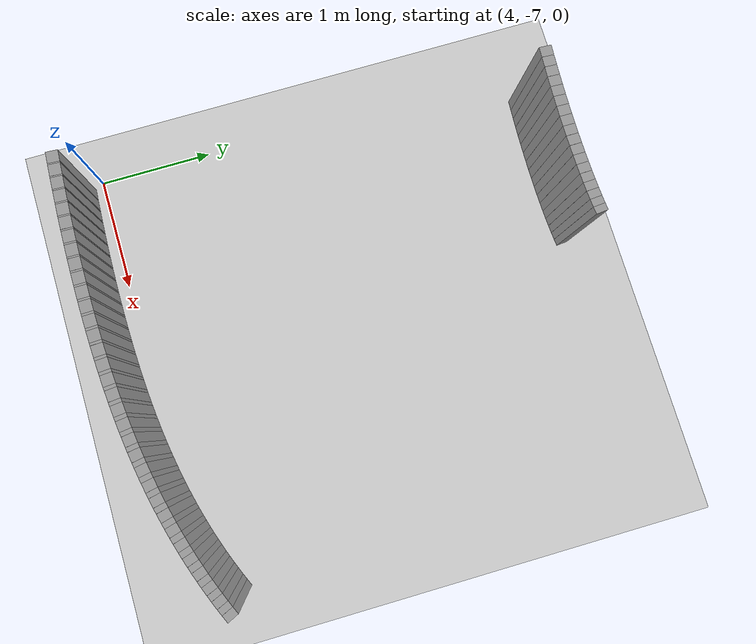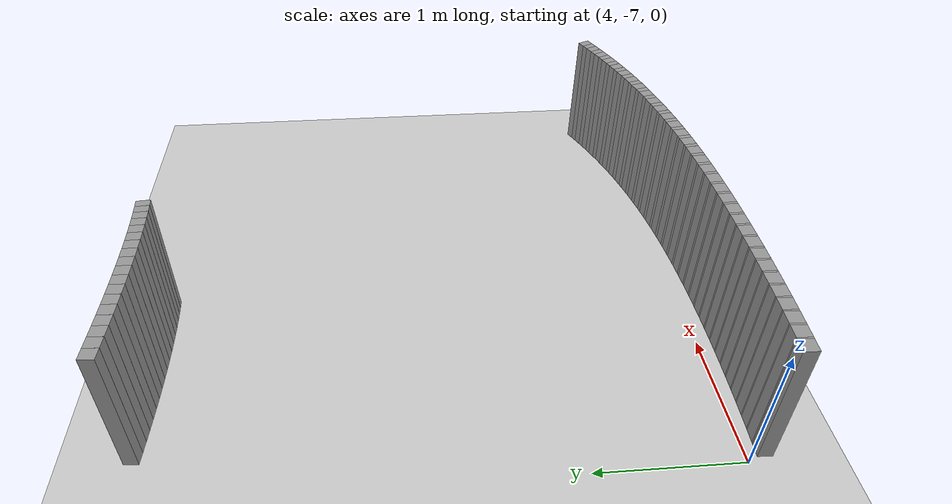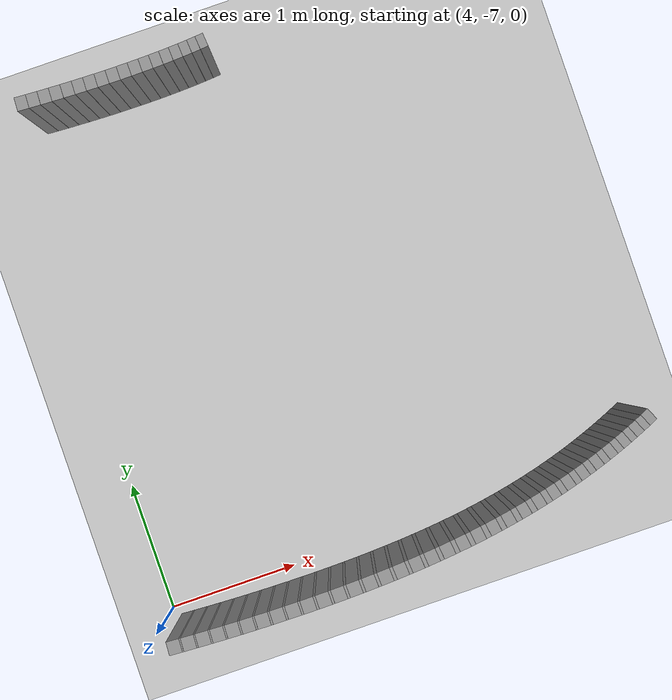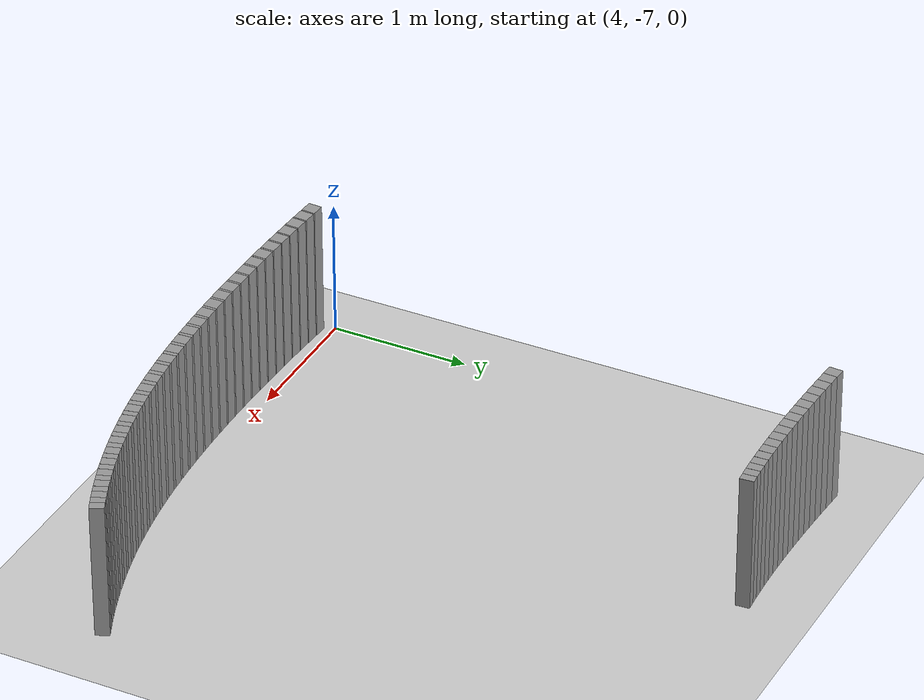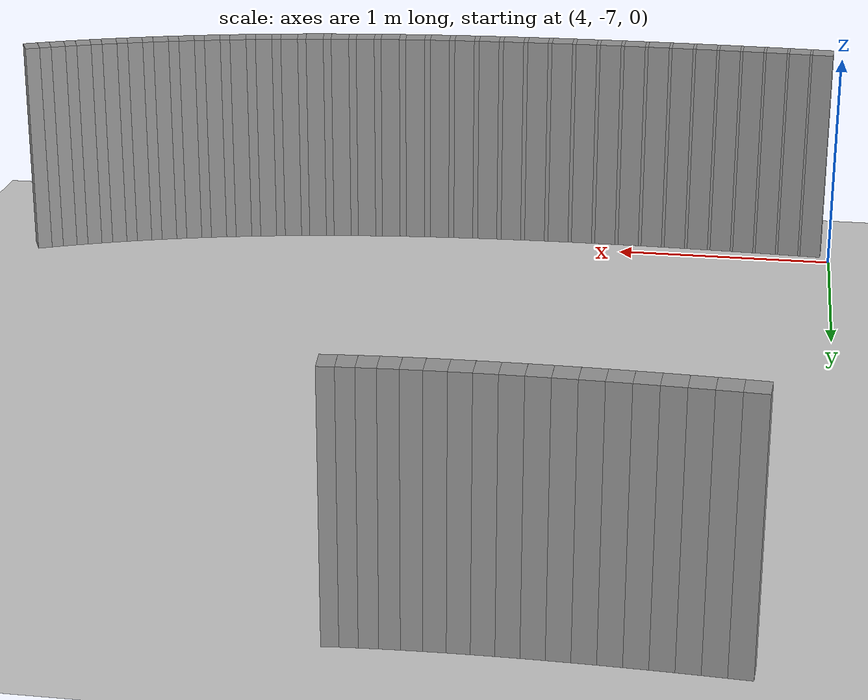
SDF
<sdf version="1.6">
 <world name="default">
  <include><uri>model://ground_plane</uri></include>
  <include><uri>model://sun</uri></include>
  <model name="wall_588_outward">
   <static>true</static>
   <link name="link">
    <collision name="collision">
     <geometry><box><size>0.06627042730125723 0.1 1.0</size></box></geometry>
    </collision>
    <visual name="visual">
     <geometry><box><size>0.06627042730125723 0.1 1.0</size></box></geometry>
     <material>
      <script><uri>file://media/materials/scripts/gazebo.material</uri><name>Gazebo/Gray</name></script>
     </material>
    </visual>
   </link>
   <pose>7.794615392788011 -6.683978554684339 0.5 0 0 -2.7150924524757714</pose>
  </model>
  <model name="wall_589_outward">
   <static>true</static>
   <link name="link">
    <collision name="collision">
     <geometry><box><size>0.0549587612287154 0.1 1.0</size></box></geometry>
    </collision>
    <visual name="visual">
     <geometry><box><size>0.0549587612287154 0.1 1.0</size></box></geometry>
     <material>
      <script><uri>file://media/materials/scripts/gazebo.material</uri><name>Gazebo/Gray</name></script>
     </material>
    </visual>
   </link>
   <pose>7.739276876362817 -6.708709218639398 0.5 0 0 -2.7288325751140525</pose>
  </model>
  <model name="wall_590_outward">
   <static>true</static>
   <link name="link">
    <collision name="collision">
     <geometry><box><size>0.06740500039941652 0.1 1.0</size></box></geometry>
    </collision>
    <visual name="visual">
     <geometry><box><size>0.06740500039941652 0.1 1.0</size></box></geometry>
     <material>
      <script><uri>file://media/materials/scripts/gazebo.material</uri><name>Gazebo/Gray</name></script>
     </material>
    </visual>
   </link>
   <pose>7.6830503868938065 -6.73282621639766 0.5 0 0 -2.742572697752328</pose>
  </model>
  <model name="wall_591_outward">
   <static>true</static>
   <link name="link">
    <collision name="collision">
     <geometry><box><size>0.05404270987663561 0.1 1.0</size></box></geometry>
    </collision>
    <visual name="visual">
     <geometry><box><size>0.05404270987663561 0.1 1.0</size></box></geometry>
     <material>
      <script><uri>file://media/materials/scripts/gazebo.material</uri><name>Gazebo/Gray</name></script>
     </material>
    </visual>
   </link>
   <pose>7.626957298886769 -6.756081018432481 0.5 0 0 -2.7560837862915024</pose>
  </model>
  <model name="wall_592_outward">
   <static>true</static>
   <link name="link">
    <collision name="collision">
     <geometry><box><size>0.06861879387193687 0.1 1.0</size></box></geometry>
    </collision>
    <visual name="visual">
     <geometry><box><size>0.06861879387193687 0.1 1.0</size></box></geometry>
     <material>
      <script><uri>file://media/materials/scripts/gazebo.material</uri><name>Gazebo/Gray</name></script>
     </material>
    </visual>
   </link>
   <pose>7.569956377666458 -6.7787125643121975 0.5 0 0 -2.769594874830688</pose>
  </model>
  <model name="wall_593_outward">
   <static>true</static>
   <link name="link">
    <collision name="collision">
     <geometry><box><size>0.053095581468589254 0.1 1.0</size></box></geometry>
    </collision>
    <visual name="visual">
     <geometry><box><size>0.053095581468589254 0.1 1.0</size></box></geometry>
     <material>
      <script><uri>file://media/materials/scripts/gazebo.material</uri><name>Gazebo/Gray</name></script>
     </material>
    </visual>
   </link>
   <pose>7.513135727767718 -6.800503629975518 0.5 0 0 -2.78286916003062</pose>
  </model>
  <model name="wall_594_outward">
   <static>true</static>
   <link name="link">
    <collision name="collision">
     <geometry><box><size>0.06990703469355782 0.1 1.0</size></box></geometry>
    </collision>
    <visual name="visual">
     <geometry><box><size>0.06990703469355782 0.1 1.0</size></box></geometry>
     <material>
      <script><uri>file://media/materials/scripts/gazebo.material</uri><name>Gazebo/Gray</name></script>
     </material>
    </visual>
   </link>
   <pose>7.455389233297448 -6.821659947365793 0.5 0 0 -2.7961434452305447</pose>
  </model>
  <model name="wall_595_outward">
   <static>true</static>
   <link name="link">
    <collision name="collision">
     <geometry><box><size>0.05207975315291838 0.1 1.0</size></box></geometry>
    </collision>
    <visual name="visual">
     <geometry><box><size>0.05207975315291838 0.1 1.0</size></box></geometry>
     <material>
      <script><uri>file://media/materials/scripts/gazebo.material</uri><name>Gazebo/Gray</name></script>
     </material>
    </visual>
   </link>
   <pose>7.397886391584759 -6.8419937369090995 0.5 0 0 -2.8091637514008707</pose>
  </model>
  <model name="wall_596_outward">
   <static>true</static>
   <link name="link">
    <collision name="collision">
     <geometry><box><size>0.07126877278915704 0.1 1.0</size></box></geometry>
    </collision>
    <visual name="visual">
     <geometry><box><size>0.07126877278915704 0.1 1.0</size></box></geometry>
     <material>
      <script><uri>file://media/materials/scripts/gazebo.material</uri><name>Gazebo/Gray</name></script>
     </material>
    </visual>
   </link>
   <pose>7.339440088517989 -6.861680967926851 0.5 0 0 -2.822184057571207</pose>
  </model>
  <model name="wall_597_outward">
   <static>true</static>
   <link name="link">
    <collision name="collision">
     <geometry><box><size>0.05097392776973177 0.1 1.0</size></box></geometry>
    </collision>
    <visual name="visual">
     <geometry><box><size>0.05097392776973177 0.1 1.0</size></box></geometry>
     <material>
      <script><uri>file://media/materials/scripts/gazebo.material</uri><name>Gazebo/Gray</name></script>
     </material>
    </visual>
   </link>
   <pose>7.281310155753585 -6.880564370174609 0.5 0 0 -2.8349278844546415</pose>
  </model>
  <model name="wall_598_outward">
   <static>true</static>
   <link name="link">
    <collision name="collision">
     <geometry><box><size>0.0727027337422325 0.1 1.0</size></box></geometry>
    </collision>
    <visual name="visual">
     <geometry><box><size>0.0727027337422325 0.1 1.0</size></box></geometry>
     <material>
      <script><uri>file://media/materials/scripts/gazebo.material</uri><name>Gazebo/Gray</name></script>
     </material>
    </visual>
   </link>
   <pose>7.222219818233321 -6.8987896465345075 0.5 0 0 -2.8476717113380645</pose>
  </model>
  <model name="wall_599_outward">
   <static>true</static>
   <link name="link">
    <collision name="collision">
     <geometry><box><size>0.04977485892525982 0.1 1.0</size></box></geometry>
    </collision>
    <visual name="visual">
     <geometry><box><size>0.04977485892525982 0.1 1.0</size></box></geometry>
     <material>
      <script><uri>file://media/materials/scripts/gazebo.material</uri><name>Gazebo/Gray</name></script>
     </material>
    </visual>
   </link>
   <pose>7.163519352941114 -6.916233999703327 0.5 0 0 -2.8601157472350756</pose>
  </model>
  <model name="wall_600_outward">
   <static>true</static>
   <link name="link">
    <collision name="collision">
     <geometry><box><size>0.07421030422105866 0.1 1.0</size></box></geometry>
    </collision>
    <visual name="visual">
     <geometry><box><size>0.07421030422105866 0.1 1.0</size></box></geometry>
     <material>
      <script><uri>file://media/materials/scripts/gazebo.material</uri><name>Gazebo/Gray</name></script>
     </material>
    </visual>
   </link>
   <pose>7.103840916660541 -6.933009619358495 0.5 0 0 -2.8725597831320875</pose>
  </model>
  <model name="wall_601_outward">
   <static>true</static>
   <link name="link">
    <collision name="collision">
     <geometry><box><size>0.04841986126981714 0.1 1.0</size></box></geometry>
    </collision>
    <visual name="visual">
     <geometry><box><size>0.04841986126981714 0.1 1.0</size></box></geometry>
     <material>
      <script><uri>file://media/materials/scripts/gazebo.material</uri><name>Gazebo/Gray</name></script>
     </material>
    </visual>
   </link>
   <pose>7.044655249749008 -6.949024130574921 0.5 0 0 -2.884665044092835</pose>
  </model>
  <model name="wall_602_outward">
   <static>true</static>
   <link name="link">
    <collision name="collision">
     <geometry><box><size>0.07579215083388645 0.1 1.0</size></box></geometry>
    </collision>
    <visual name="visual">
     <geometry><box><size>0.07579215083388645 0.1 1.0</size></box></geometry>
     <material>
      <script><uri>file://media/materials/scripts/gazebo.material</uri><name>Gazebo/Gray</name></script>
     </material>
    </visual>
   </link>
   <pose>6.984473973996927 -6.964361522656267 0.5 0 0 -2.8967703050535896</pose>
  </model>
  <model name="wall_603_outward">
   <static>true</static>
   <link name="link">
    <collision name="collision">
     <geometry><box><size>0.04691995874928324 0.1 1.0</size></box></geometry>
    </collision>
    <visual name="visual">
     <geometry><box><size>0.04691995874928324 0.1 1.0</size></box></geometry>
     <material>
      <script><uri>file://media/materials/scripts/gazebo.material</uri><name>Gazebo/Gray</name></script>
     </material>
    </visual>
   </link>
   <pose>6.924882397583599 -6.978965876473526 0.5 0 0 -2.9085005637509878</pose>
  </model>
  <model name="wall_604_outward">
   <static>true</static>
   <link name="link">
    <collision name="collision">
     <geometry><box><size>0.07744970908711989 0.1 1.0</size></box></geometry>
    </collision>
    <visual name="visual">
     <geometry><box><size>0.07744970908711989 0.1 1.0</size></box></geometry>
     <material>
      <script><uri>file://media/materials/scripts/gazebo.material</uri><name>Gazebo/Gray</name></script>
     </material>
    </visual>
   </link>
   <pose>6.864276907760781 -6.9928871970898445 0.5 0 0 -2.920230822448364</pose>
  </model>
  <model name="wall_605_outward">
   <static>true</static>
   <link name="link">
    <collision name="collision">
     <geometry><box><size>0.045177178706683675 0.1 1.0</size></box></geometry>
    </collision>
    <visual name="visual">
     <geometry><box><size>0.045177178706683675 0.1 1.0</size></box></geometry>
     <material>
      <script><uri>file://media/materials/scripts/gazebo.material</uri><name>Gazebo/Gray</name></script>
     </material>
    </visual>
   </link>
   <pose>6.804404942967606 -7.006099867068913 0.5 0 0 -2.931525357257578</pose>
  </model>
  <model name="wall_606_outward">
   <static>true</static>
   <link name="link">
    <collision name="collision">
     <geometry><box><size>0.07918091173613957 0.1 1.0</size></box></geometry>
    </collision>
    <visual name="visual">
     <geometry><box><size>0.07918091173613957 0.1 1.0</size></box></geometry>
     <material>
      <script><uri>file://media/materials/scripts/gazebo.material</uri><name>Gazebo/Gray</name></script>
     </material>
    </visual>
   </link>
   <pose>6.743502015087227 -7.018627953900948 0.5 0 0 -2.942819892066797</pose>
  </model>
  <model name="wall_607_outward">
   <static>true</static>
   <link name="link">
    <collision name="collision">
     <geometry><box><size>0.04321322068265127 0.1 1.0</size></box></geometry>
    </collision>
    <visual name="visual">
     <geometry><box><size>0.04321322068265127 0.1 1.0</size></box></geometry>
     <material>
      <script><uri>file://media/materials/scripts/gazebo.material</uri><name>Gazebo/Gray</name></script>
     </material>
    </visual>
   </link>
   <pose>6.683465083177946 -7.0304832430115205 0.5 0 0 -2.9536234073933123</pose>
  </model>
  <model name="wall_608_outward">
   <static>true</static>
   <link name="link">
    <collision name="collision">
     <geometry><box><size>0.08097906192641398 0.1 1.0</size></box></geometry>
    </collision>
    <visual name="visual">
     <geometry><box><size>0.08097906192641398 0.1 1.0</size></box></geometry>
     <material>
      <script><uri>file://media/materials/scripts/gazebo.material</uri><name>Gazebo/Gray</name></script>
     </material>
    </visual>
   </link>
   <pose>6.622383302626609 -7.041656637421045 0.5 0 0 -2.9644269227198308</pose>
  </model>
  <model name="wall_609_outward">
   <static>true</static>
   <link name="link">
    <collision name="collision">
     <geometry><box><size>0.041040984313733576 0.1 1.0</size></box></geometry>
    </collision>
    <visual name="visual">
     <geometry><box><size>0.041040984313733576 0.1 1.0</size></box></geometry>
     <material>
      <script><uri>file://media/materials/scripts/gazebo.material</uri><name>Gazebo/Gray</name></script>
     </material>
    </visual>
   </link>
   <pose>6.562292216391684 -7.052201627062857 0.5 0 0 -2.974687348827343</pose>
  </model>
  <model name="wall_610_outward">
   <static>true</static>
   <link name="link">
    <collision name="collision">
     <geometry><box><size>0.08283197364068758 0.1 1.0</size></box></geometry>
    </collision>
    <visual name="visual">
     <geometry><box><size>0.08283197364068758 0.1 1.0</size></box></geometry>
     <material>
      <script><uri>file://media/materials/scripts/gazebo.material</uri><name>Gazebo/Gray</name></script>
     </material>
    </visual>
   </link>
   <pose>6.501147984754352 -7.062071829415188 0.5 0 0 -2.9849477749348514</pose>
  </model>
  <model name="wall_611_outward">
   <static>true</static>
   <link name="link">
    <collision name="collision">
     <geometry><box><size>0.03866749161413029 0.1 1.0</size></box></geometry>
    </collision>
    <visual name="visual">
     <geometry><box><size>0.03866749161413029 0.1 1.0</size></box></geometry>
     <material>
      <script><uri>file://media/materials/scripts/gazebo.material</uri><name>Gazebo/Gray</name></script>
     </material>
    </visual>
   </link>
   <pose>6.441113791654345 -7.071364344940091 0.5 0 0 -2.9946147984037395</pose>
  </model>
  <model name="wall_612_outward">
   <static>true</static>
   <link name="link">
    <collision name="collision">
     <geometry><box><size>0.08472186456942572 0.1 1.0</size></box></geometry>
    </collision>
    <visual name="visual">
     <geometry><box><size>0.08472186456942572 0.1 1.0</size></box></geometry>
     <material>
      <script><uri>file://media/materials/scripts/gazebo.material</uri><name>Gazebo/Gray</name></script>
     </material>
    </visual>
   </link>
   <pose>6.380026281486312 -7.079994111488824 0.5 0 0 -3.0042818218726173</pose>
  </model>
  <model name="wall_613_outward">
   <static>true</static>
   <link name="link">
    <collision name="collision">
     <geometry><box><size>0.03615880704034693 0.1 1.0</size></box></geometry>
    </collision>
    <visual name="visual">
     <geometry><box><size>0.03615880704034693 0.1 1.0</size></box></geometry>
     <material>
      <script><uri>file://media/materials/scripts/gazebo.material</uri><name>Gazebo/Gray</name></script>
     </material>
    </visual>
   </link>
   <pose>6.320133191215676 -7.088105174646982 0.5 0 0 -3.0133216467522566</pose>
  </model>
  <model name="wall_614_outward">
   <static>true</static>
   <link name="link">
    <collision name="collision">
     <geometry><box><size>0.08662164908750382 0.1 1.0</size></box></geometry>
    </collision>
    <visual name="visual">
     <geometry><box><size>0.08662164908750382 0.1 1.0</size></box></geometry>
     <material>
      <script><uri>file://media/materials/scripts/gazebo.material</uri><name>Gazebo/Gray</name></script>
     </material>
    </visual>
   </link>
   <pose>6.259198984047567 -7.095569657929078 0.5 0 0 -3.022361471631895</pose>
  </model>
  <model name="wall_615_outward">
   <static>true</static>
   <link name="link">
    <collision name="collision">
     <geometry><box><size>0.03359078083096853 0.1 1.0</size></box></geometry>
    </collision>
    <visual name="visual">
     <geometry><box><size>0.03359078083096853 0.1 1.0</size></box></geometry>
     <material>
      <script><uri>file://media/materials/scripts/gazebo.material</uri><name>Gazebo/Gray</name></script>
     </material>
    </visual>
   </link>
   <pose>6.1995033115802185 -7.102579113381811 0.5 0 0 -3.0307592655454667</pose>
  </model>
  <model name="wall_616_outward">
   <static>true</static>
   <link name="link">
    <collision name="collision">
     <geometry><box><size>0.08849886817367057 0.1 1.0</size></box></geometry>
    </collision>
    <visual name="visual">
     <geometry><box><size>0.08849886817367057 0.1 1.0</size></box></geometry>
     <material>
      <script><uri>file://media/materials/scripts/gazebo.material</uri><name>Gazebo/Gray</name></script>
     </material>
    </visual>
   </link>
   <pose>6.138793491997008 -7.1089615888655615 0.5 0 0 -3.039157059459063</pose>
  </model>
  <model name="wall_617_outward">
   <static>true</static>
   <link name="link">
    <collision name="collision">
     <geometry><box><size>0.031006895213621127 0.1 1.0</size></box></geometry>
    </collision>
    <visual name="visual">
     <geometry><box><size>0.031006895213621127 0.1 1.0</size></box></geometry>
     <material>
      <script><uri>file://media/materials/scripts/gazebo.material</uri><name>Gazebo/Gray</name></script>
     </material>
    </visual>
   </link>
   <pose>6.079342005616445 -7.1149521159610964 0.5 0 0 -3.0469088608970756</pose>
  </model>
  <model name="wall_618_outward">
   <static>true</static>
   <link name="link">
    <collision name="collision">
     <geometry><box><size>0.09031620159547896 0.1 1.0</size></box></geometry>
    </collision>
    <visual name="visual">
     <geometry><box><size>0.09031620159547896 0.1 1.0</size></box></geometry>
     <material>
      <script><uri>file://media/materials/scripts/gazebo.material</uri><name>Gazebo/Gray</name></script>
     </material>
    </visual>
   </link>
   <pose>6.018920425988029 -7.120338589814447 0.5 0 0 -3.054660662335089</pose>
  </model>
  <model name="wall_619_outward">
   <static>true</static>
   <link name="link">
    <collision name="collision">
     <geometry><box><size>0.02852899562708041 0.1 1.0</size></box></geometry>
    </collision>
    <visual name="visual">
     <geometry><box><size>0.02852899562708041 0.1 1.0</size></box></geometry>
     <material>
      <script><uri>file://media/materials/scripts/gazebo.material</uri><name>Gazebo/Gray</name></script>
     </material>
    </visual>
   </link>
   <pose>5.959713747679501 -7.125396425451646 0.5 0 0 -3.0617929717116064</pose>
  </model>
  <model name="wall_620_outward">
   <static>true</static>
   <link name="link">
    <collision name="collision">
     <geometry><box><size>0.09203153227418259 0.1 1.0</size></box></geometry>
    </collision>
    <visual name="visual">
     <geometry><box><size>0.09203153227418259 0.1 1.0</size></box></geometry>
     <material>
      <script><uri>file://media/materials/scripts/gazebo.material</uri><name>Gazebo/Gray</name></script>
     </material>
    </visual>
   </link>
   <pose>5.899600318471309 -7.129874422815136 0.5 0 0 -3.068925281088127</pose>
  </model>
  <model name="wall_621_outward">
   <static>true</static>
   <link name="link">
    <collision name="collision">
     <geometry><box><size>0.026174369833819537 0.1 1.0</size></box></geometry>
    </collision>
    <visual name="visual">
     <geometry><box><size>0.026174369833819537 0.1 1.0</size></box></geometry>
     <material>
      <script><uri>file://media/materials/scripts/gazebo.material</uri><name>Gazebo/Gray</name></script>
     </material>
    </visual>
   </link>
   <pose>5.840647408613172 -7.134080068567046 0.5 0 0 -3.0754689202453984</pose>
  </model>
  <model name="wall_622_outward">
   <static>true</static>
   <link name="link">
    <collision name="collision">
     <geometry><box><size>0.09360728423955691 0.1 1.0</size></box></geometry>
    </collision>
    <visual name="visual">
     <geometry><box><size>0.09360728423955691 0.1 1.0</size></box></geometry>
     <material>
      <script><uri>file://media/materials/scripts/gazebo.material</uri><name>Gazebo/Gray</name></script>
     </material>
    </visual>
   </link>
   <pose>5.780868228941232 -7.137731727507622 0.5 0 0 -3.082012559402664</pose>
  </model>
  <model name="wall_623_outward">
   <static>true</static>
   <link name="link">
    <collision name="collision">
     <geometry><box><size>0.02402663630371048 0.1 1.0</size></box></geometry>
    </collision>
    <visual name="visual">
     <geometry><box><size>0.02402663630371048 0.1 1.0</size></box></geometry>
     <material>
      <script><uri>file://media/materials/scripts/gazebo.material</uri><name>Gazebo/Gray</name></script>
     </material>
    </visual>
   </link>
   <pose>5.722151551237232 -7.141161929870149 0.5 0 0 -3.088019254599149</pose>
  </model>
  <model name="wall_624_outward">
   <static>true</static>
   <link name="link">
    <collision name="collision">
     <geometry><box><size>0.09500541168517114 0.1 1.0</size></box></geometry>
    </collision>
    <visual name="visual">
     <geometry><box><size>0.09500541168517114 0.1 1.0</size></box></geometry>
     <material>
      <script><uri>file://media/materials/scripts/gazebo.material</uri><name>Gazebo/Gray</name></script>
     </material>
    </visual>
   </link>
   <pose>5.6627064923595185 -7.144063911499246 0.5 0 0 -3.094025949795685</pose>
  </model>
  <model name="wall_625_outward">
   <static>true</static>
   <link name="link">
    <collision name="collision">
     <geometry><box><size>0.022085663145297404 0.1 1.0</size></box></geometry>
    </collision>
    <visual name="visual">
     <geometry><box><size>0.022085663145297404 0.1 1.0</size></box></geometry>
     <material>
      <script><uri>file://media/materials/scripts/gazebo.material</uri><name>Gazebo/Gray</name></script>
     </material>
    </visual>
   </link>
   <pose>5.604224443759633 -7.146786768599914 0.5 0 0 -3.0995473936367888</pose>
  </model>
  <model name="wall_626_outward">
   <static>true</static>
   <link name="link">
    <collision name="collision">
     <geometry><box><size>0.09619620018702894 0.1 1.0</size></box></geometry>
    </collision>
    <visual name="visual">
     <geometry><box><size>0.09619620018702894 0.1 1.0</size></box></geometry>
     <material>
      <script><uri>file://media/materials/scripts/gazebo.material</uri><name>Gazebo/Gray</name></script>
     </material>
    </visual>
   </link>
   <pose>5.5451253490414025 -7.149007266151511 0.5 0 0 -3.10506883747779</pose>
  </model>
  <model name="wall_627_outward">
   <static>true</static>
   <link name="link">
    <collision name="collision">
     <geometry><box><size>0.02039786319269992 0.1 1.0</size></box></geometry>
    </collision>
    <visual name="visual">
     <geometry><box><size>0.02039786319269992 0.1 1.0</size></box></geometry>
     <material>
      <script><uri>file://media/materials/scripts/gazebo.material</uri><name>Gazebo/Gray</name></script>
     </material>
    </visual>
   </link>
   <pose>5.486865430206006 -7.151084043594163 0.5 0 0 -3.110168325377729</pose>
  </model>
  <model name="wall_628_outward">
   <static>true</static>
   <link name="link">
    <collision name="collision">
     <geometry><box><size>0.09715945075471649 0.1 1.0</size></box></geometry>
    </collision>
    <visual name="visual">
     <geometry><box><size>0.09715945075471649 0.1 1.0</size></box></geometry>
     <material>
      <script><uri>file://media/materials/scripts/gazebo.material</uri><name>Gazebo/Gray</name></script>
     </material>
    </visual>
   </link>
   <pose>5.4281086403164505 -7.152683191234309 0.5 0 0 -3.115267813277764</pose>
  </model>
  <model name="wall_629_outward">
   <static>true</static>
   <link name="link">
    <collision name="collision">
     <geometry><box><size>0.018963465211720636 0.1 1.0</size></box></geometry>
    </collision>
    <visual name="visual">
     <geometry><box><size>0.018963465211720636 0.1 1.0</size></box></geometry>
     <material>
      <script><uri>file://media/materials/scripts/gazebo.material</uri><name>Gazebo/Gray</name></script>
     </material>
    </visual>
   </link>
   <pose>5.370066222696632 -7.154166534457298 0.5 0 0 -3.120008697340025</pose>
  </model>
  <model name="wall_630_outward">
   <static>true</static>
   <link name="link">
    <collision name="collision">
     <geometry><box><size>0.09788377882166659 0.1 1.0</size></box></geometry>
    </collision>
    <visual name="visual">
     <geometry><box><size>0.09788377882166659 0.1 1.0</size></box></geometry>
     <material>
      <script><uri>file://media/materials/scripts/gazebo.material</uri><name>Gazebo/Gray</name></script>
     </material>
    </visual>
   </link>
   <pose>5.3116517511838435 -7.155195464670436 0.5 0 0 -3.124749581402259</pose>
  </model>
  <model name="wall_631_outward">
   <static>true</static>
   <link name="link">
    <collision name="collision">
     <geometry><box><size>0.017705980044105868 0.1 1.0</size></box></geometry>
    </collision>
    <visual name="visual">
     <geometry><box><size>0.017705980044105868 0.1 1.0</size></box></geometry>
     <material>
      <script><uri>file://media/materials/scripts/gazebo.material</uri><name>Gazebo/Gray</name></script>
     </material>
    </visual>
   </link>
   <pose>5.253864496155176 -7.156129678353066 0.5 0 0 -3.1291760908688047</pose>
  </model>
  <model name="wall_632_outward">
   <static>true</static>
   <link name="link">
    <collision name="collision">
     <geometry><box><size>0.09837152458688993 0.1 1.0</size></box></geometry>
    </collision>
    <visual name="visual">
     <geometry><box><size>0.09837152458688993 0.1 1.0</size></box></geometry>
     <material>
      <script><uri>file://media/materials/scripts/gazebo.material</uri><name>Gazebo/Gray</name></script>
     </material>
    </visual>
   </link>
   <pose>5.195827996292772 -7.15663259191301 0.5 0 0 -3.1336026003352724</pose>
  </model>
  <model name="wall_633_outward">
   <static>true</static>
   <link name="link">
    <collision name="collision">
     <geometry><box><size>0.016660097984225134 0.1 1.0</size></box></geometry>
    </collision>
    <visual name="visual">
     <geometry><box><size>0.016660097984225134 0.1 1.0</size></box></geometry>
     <material>
      <script><uri>file://media/materials/scripts/gazebo.material</uri><name>Gazebo/Gray</name></script>
     </material>
    </visual>
   </link>
   <pose>5.138313815969153 -7.15705744709051 0.5 0 0 -3.1377676368734497</pose>
  </model>
  <model name="wall_634_outward">
   <static>true</static>
   <link name="link">
    <collision name="collision">
     <geometry><box><size>0.09863455235709448 0.1 1.0</size></box></geometry>
    </collision>
    <visual name="visual">
     <geometry><box><size>0.09863455235709448 0.1 1.0</size></box></geometry>
     <material>
      <script><uri>file://media/materials/scripts/gazebo.material</uri><name>Gazebo/Gray</name></script>
     </material>
    </visual>
   </link>
   <pose>5.080666554586734 -7.157072540738317 0.5 0 0 3.1412526337678583</pose>
  </model>
  <model name="wall_635_outward">
   <static>true</static>
   <link name="link">
    <collision name="collision">
     <geometry><box><size>0.01577620641408521 0.1 1.0</size></box></geometry>
    </collision>
    <visual name="visual">
     <geometry><box><size>0.01577620641408521 0.1 1.0</size></box></geometry>
     <material>
      <script><uri>file://media/materials/scripts/gazebo.material</uri><name>Gazebo/Gray</name></script>
     </material>
    </visual>
   </link>
   <pose>5.023461250438485 -7.157021978712336 0.5 0 0 3.1373085719389526</pose>
  </model>
  <model name="wall_636_outward">
   <static>true</static>
   <link name="link">
    <collision name="collision">
     <geometry><box><size>0.09869404076234123 0.1 1.0</size></box></geometry>
    </collision>
    <visual name="visual">
     <geometry><box><size>0.09869404076234123 0.1 1.0</size></box></geometry>
     <material>
      <script><uri>file://media/materials/scripts/gazebo.material</uri><name>Gazebo/Gray</name></script>
     </material>
    </visual>
   </link>
   <pose>4.966227869681822 -7.156582155755067 0.5 0 0 3.1333645101100513</pose>
  </model>
  <model name="wall_637_outward">
   <static>true</static>
   <link name="link">
    <collision name="collision">
     <geometry><box><size>0.014995840343432574 0.1 1.0</size></box></geometry>
    </collision>
    <visual name="visual">
     <geometry><box><size>0.014995840343432574 0.1 1.0</size></box></geometry>
     <material>
      <script><uri>file://media/materials/scripts/gazebo.material</uri><name>Gazebo/Gray</name></script>
     </material>
    </visual>
   </link>
   <pose>4.909385137360482 -7.156086324687422 0.5 0 0 3.1296155412423543</pose>
  </model>
  <model name="wall_638_outward">
   <static>true</static>
   <link name="link">
    <collision name="collision">
     <geometry><box><size>0.09857794679557734 0.1 1.0</size></box></geometry>
    </collision>
    <visual name="visual">
     <geometry><box><size>0.09857794679557734 0.1 1.0</size></box></geometry>
     <material>
      <script><uri>file://media/materials/scripts/gazebo.material</uri><name>Gazebo/Gray</name></script>
     </material>
    </visual>
   </link>
   <pose>4.8526048762707354 -7.155221432952356 0.5 0 0 3.1258665723747185</pose>
  </model>
  <model name="wall_639_outward">
   <static>true</static>
   <link name="link">
    <collision name="collision">
     <geometry><box><size>0.014318399857780335 0.1 1.0</size></box></geometry>
    </collision>
    <visual name="visual">
     <geometry><box><size>0.014318399857780335 0.1 1.0</size></box></geometry>
     <material>
      <script><uri>file://media/materials/scripts/gazebo.material</uri><name>Gazebo/Gray</name></script>
     </material>
    </visual>
   </link>
   <pose>4.796164131747254 -7.154308137801858 0.5 0 0 3.122286964765696</pose>
  </model>
  <model name="wall_640_outward">
   <static>true</static>
   <link name="link">
    <collision name="collision">
     <geometry><box><size>0.0983176949674708 0.1 1.0</size></box></geometry>
    </collision>
    <visual name="visual">
     <geometry><box><size>0.0983176949674708 0.1 1.0</size></box></geometry>
     <material>
      <script><uri>file://media/materials/scripts/gazebo.material</uri><name>Gazebo/Gray</name></script>
     </material>
    </visual>
   </link>
   <pose>4.739860291031262 -7.153045016503603 0.5 0 0 3.1187073571566293</pose>
  </model>
  <model name="wall_641_outward">
   <static>true</static>
   <link name="link">
    <collision name="collision">
     <geometry><box><size>0.013669290022458588 0.1 1.0</size></box></geometry>
    </collision>
    <visual name="visual">
     <geometry><box><size>0.013669290022458588 0.1 1.0</size></box></geometry>
     <material>
      <script><uri>file://media/materials/scripts/gazebo.material</uri><name>Gazebo/Gray</name></script>
     </material>
    </visual>
   </link>
   <pose>4.683882035186505 -7.151740351524725 0.5 0 0 3.1152900279996714</pose>
  </model>
  <model name="wall_642_outward">
   <static>true</static>
   <link name="link">
    <collision name="collision">
     <geometry><box><size>0.09794402322084232 0.1 1.0</size></box></geometry>
    </collision>
    <visual name="visual">
     <geometry><box><size>0.09794402322084232 0.1 1.0</size></box></geometry>
     <material>
      <script><uri>file://media/materials/scripts/gazebo.material</uri><name>Gazebo/Gray</name></script>
     </material>
    </visual>
   </link>
   <pose>4.6280993689306005 -7.150105371425072 0.5 0 0 3.1118726988427263</pose>
  </model>
  <model name="wall_643_outward">
   <static>true</static>
   <link name="link">
    <collision name="collision">
     <geometry><box><size>0.01307807762528599 0.1 1.0</size></box></geometry>
    </collision>
    <visual name="visual">
     <geometry><box><size>0.01307807762528599 0.1 1.0</size></box></geometry>
     <material>
      <script><uri>file://media/materials/scripts/gazebo.material</uri><name>Gazebo/Gray</name></script>
     </material>
    </visual>
   </link>
   <pose>4.572613502724005 -7.148434459342698 0.5 0 0 3.1086031736113133</pose>
  </model>
  <model name="wall_644_outward">
   <static>true</static>
   <link name="link">
    <collision name="collision">
     <geometry><box><size>0.09748605995292195 0.1 1.0</size></box></geometry>
    </collision>
    <visual name="visual">
     <geometry><box><size>0.09748605995292195 0.1 1.0</size></box></geometry>
     <material>
      <script><uri>file://media/materials/scripts/gazebo.material</uri><name>Gazebo/Gray</name></script>
     </material>
    </visual>
   </link>
   <pose>4.517367029946304 -7.146451792440995 0.5 0 0 3.1053336483799048</pose>
  </model>
  <model name="wall_645_outward">
   <static>true</static>
   <link name="link">
    <collision name="collision">
     <geometry><box><size>0.012495511738905786 0.1 1.0</size></box></geometry>
    </collision>
    <visual name="visual">
     <geometry><box><size>0.012495511738905786 0.1 1.0</size></box></geometry>
     <material>
      <script><uri>file://media/materials/scripts/gazebo.material</uri><name>Gazebo/Gray</name></script>
     </material>
    </visual>
   </link>
   <pose>4.462413126743181 -7.144438814832902 0.5 0 0 3.102209765364347</pose>
  </model>
  <model name="wall_646_outward">
   <static>true</static>
   <link name="link">
    <collision name="collision">
     <geometry><box><size>0.09696810999644395 0.1 1.0</size></box></geometry>
    </collision>
    <visual name="visual">
     <geometry><box><size>0.09696810999644395 0.1 1.0</size></box></geometry>
     <material>
      <script><uri>file://media/materials/scripts/gazebo.material</uri><name>Gazebo/Gray</name></script>
     </material>
    </visual>
   </link>
   <pose>4.407729954942328 -7.142132543686486 0.5 0 0 3.099085882348835</pose>
  </model>
  <model name="wall_647_outward">
   <static>true</static>
   <link name="link">
    <collision name="collision">
     <geometry><box><size>0.01194633707090099 0.1 1.0</size></box></geometry>
    </collision>
    <visual name="visual">
     <geometry><box><size>0.01194633707090099 0.1 1.0</size></box></geometry>
     <material>
      <script><uri>file://media/materials/scripts/gazebo.material</uri><name>Gazebo/Gray</name></script>
     </material>
    </visual>
   </link>
   <pose>4.353322706035473 -7.139800617828621 0.5 0 0 3.0960992936412213</pose>
  </model>
  <model name="wall_648_outward">
   <static>true</static>
   <link name="link">
    <collision name="collision">
     <geometry><box><size>0.09640871263027649 0.1 1.0</size></box></geometry>
    </collision>
    <visual name="visual">
     <geometry><box><size>0.09640871263027649 0.1 1.0</size></box></geometry>
     <material>
      <script><uri>file://media/materials/scripts/gazebo.material</uri><name>Gazebo/Gray</name></script>
     </material>
    </visual>
   </link>
   <pose>4.299207997676434 -7.137192942642365 0.5 0 0 3.093112704933551</pose>
  </model>
  <model name="wall_649_outward">
   <static>true</static>
   <link name="link">
    <collision name="collision">
     <geometry><box><size>0.011422104961910415 0.1 1.0</size></box></geometry>
    </collision>
    <visual name="visual">
     <geometry><box><size>0.011422104961910415 0.1 1.0</size></box></geometry>
     <material>
      <script><uri>file://media/materials/scripts/gazebo.material</uri><name>Gazebo/Gray</name></script>
     </material>
    </visual>
   </link>
   <pose>4.24535674887173 -7.134563862378443 0.5 0 0 3.0902571748123555</pose>
  </model>
  <model name="wall_650_outward">
   <static>true</static>
   <link name="link">
    <collision name="collision">
     <geometry><box><size>0.09581864623385208 0.1 1.0</size></box></geometry>
    </collision>
    <visual name="visual">
     <geometry><box><size>0.09581864623385208 0.1 1.0</size></box></geometry>
     <material>
      <script><uri>file://media/materials/scripts/gazebo.material</uri><name>Gazebo/Gray</name></script>
     </material>
    </visual>
   </link>
   <pose>4.191814226492393 -7.1316758274988645 0.5 0 0 3.0874016446912185</pose>
  </model>
  <model name="wall_651_outward">
   <static>true</static>
   <link name="link">
    <collision name="collision">
     <geometry><box><size>0.010906183000362845 0.1 1.0</size></box></geometry>
    </collision>
    <visual name="visual">
     <geometry><box><size>0.010906183000362845 0.1 1.0</size></box></geometry>
     <material>
      <script><uri>file://media/materials/scripts/gazebo.material</uri><name>Gazebo/Gray</name></script>
     </material>
    </visual>
   </link>
   <pose>4.138530972044601 -7.128770634382884 0.5 0 0 3.084675095562932</pose>
  </model>
  <model name="wall_652_outward">
   <static>true</static>
   <link name="link">
    <collision name="collision">
     <geometry><box><size>0.09520684241940942 0.1 1.0</size></box></geometry>
    </collision>
    <visual name="visual">
     <geometry><box><size>0.09520684241940942 0.1 1.0</size></box></geometry>
     <material>
      <script><uri>file://media/materials/scripts/gazebo.material</uri><name>Gazebo/Gray</name></script>
     </material>
    </visual>
   </link>
   <pose>4.0855679374624145 -7.125622844840597 0.5 0 0 3.081948546434587</pose>
  </model>
  <model name="wall_254_inward">
   <static>true</static>
   <link name="link">
    <collision name="collision">
     <geometry><box><size>0.060547427535051206 0.1 1.0</size></box></geometry>
    </collision>
    <visual name="visual">
     <geometry><box><size>0.060547427535051206 0.1 1.0</size></box></geometry>
     <material>
      <script><uri>file://media/materials/scripts/gazebo.material</uri><name>Gazebo/Gray</name></script>
     </material>
    </visual>
   </link>
   <pose>5.671013081862191 -3.135497204800954 0.5 0 0 -3.05466066233509</pose>
  </model>
  <model name="wall_255_inward">
   <static>true</static>
   <link name="link">
    <collision name="collision">
     <geometry><box><size>0.0646792065232304 0.1 1.0</size></box></geometry>
    </collision>
    <visual name="visual">
     <geometry><box><size>0.0646792065232304 0.1 1.0</size></box></geometry>
     <material>
      <script><uri>file://media/materials/scripts/gazebo.material</uri><name>Gazebo/Gray</name></script>
     </material>
    </visual>
   </link>
   <pose>5.60859943245982 -3.1404736118028374 0.5 0 0 -3.068925281088125</pose>
  </model>
  <model name="wall_256_inward">
   <static>true</static>
   <link name="link">
    <collision name="collision">
     <geometry><box><size>0.06850628424844785 0.1 1.0</size></box></geometry>
    </collision>
    <visual name="visual">
     <geometry><box><size>0.06850628424844785 0.1 1.0</size></box></geometry>
     <material>
      <script><uri>file://media/materials/scripts/gazebo.material</uri><name>Gazebo/Gray</name></script>
     </material>
    </visual>
   </link>
   <pose>5.5421528126128425 -3.1448611763453753 0.5 0 0 -3.0820125594026644</pose>
  </model>
  <model name="wall_257_inward">
   <static>true</static>
   <link name="link">
    <collision name="collision">
     <geometry><box><size>0.07194887690495147 0.1 1.0</size></box></geometry>
    </collision>
    <visual name="visual">
     <geometry><box><size>0.07194887690495147 0.1 1.0</size></box></geometry>
     <material>
      <script><uri>file://media/materials/scripts/gazebo.material</uri><name>Gazebo/Gray</name></script>
     </material>
    </visual>
   </link>
   <pose>5.472026699796903 -3.1486113148347807 0.5 0 0 -3.094025949795681</pose>
  </model>
  <model name="wall_258_inward">
   <static>true</static>
   <link name="link">
    <collision name="collision">
     <geometry><box><size>0.07495413607613965 0.1 1.0</size></box></geometry>
    </collision>
    <visual name="visual">
     <geometry><box><size>0.07495413607613965 0.1 1.0</size></box></geometry>
     <material>
      <script><uri>file://media/materials/scripts/gazebo.material</uri><name>Gazebo/Gray</name></script>
     </material>
    </visual>
   </link>
   <pose>5.398640877581576 -3.1516903563133636 0.5 0 0 -3.105068837477795</pose>
  </model>
  <model name="wall_259_inward">
   <static>true</static>
   <link name="link">
    <collision name="collision">
     <geometry><box><size>0.07747854738405796 0.1 1.0</size></box></geometry>
    </collision>
    <visual name="visual">
     <geometry><box><size>0.07747854738405796 0.1 1.0</size></box></geometry>
     <material>
      <script><uri>file://media/materials/scripts/gazebo.material</uri><name>Gazebo/Gray</name></script>
     </material>
    </visual>
   </link>
   <pose>5.322462952403009 -3.15407854495728 0.5 0 0 -3.115267813277762</pose>
  </model>
  <model name="wall_260_inward">
   <static>true</static>
   <link name="link">
    <collision name="collision">
     <geometry><box><size>0.07954886290374173 0.1 1.0</size></box></geometry>
    </collision>
    <visual name="visual">
     <geometry><box><size>0.07954886290374173 0.1 1.0</size></box></geometry>
     <material>
      <script><uri>file://media/materials/scripts/gazebo.material</uri><name>Gazebo/Gray</name></script>
     </material>
    </visual>
   </link>
   <pose>5.243968311240955 -3.1557681243136892 0.5 0 0 -3.124749581402262</pose>
  </model>
  <model name="wall_261_inward">
   <static>true</static>
   <link name="link">
    <collision name="collision">
     <geometry><box><size>0.08118832658585196 0.1 1.0</size></box></geometry>
    </collision>
    <visual name="visual">
     <geometry><box><size>0.08118832658585196 0.1 1.0</size></box></geometry>
     <material>
      <script><uri>file://media/materials/scripts/gazebo.material</uri><name>Gazebo/Gray</name></script>
     </material>
    </visual>
   </link>
   <pose>5.163606653926832 -3.156762362334712 0.5 0 0 -3.1336026003352715</pose>
  </model>
  <model name="wall_262_inward">
   <static>true</static>
   <link name="link">
    <collision name="collision">
     <geometry><box><size>0.08241626655200378 0.1 1.0</size></box></geometry>
    </collision>
    <visual name="visual">
     <geometry><box><size>0.08241626655200378 0.1 1.0</size></box></geometry>
     <material>
      <script><uri>file://media/materials/scripts/gazebo.material</uri><name>Gazebo/Gray</name></script>
     </material>
    </visual>
   </link>
   <pose>5.081805655518114 -3.1570726968282568 0.5 0 0 3.1412526337678592</pose>
  </model>
  <model name="wall_263_inward">
   <static>true</static>
   <link name="link">
    <collision name="collision">
     <geometry><box><size>0.08330790333998739 0.1 1.0</size></box></geometry>
    </collision>
    <visual name="visual">
     <geometry><box><size>0.08330790333998739 0.1 1.0</size></box></geometry>
     <material>
      <script><uri>file://media/materials/scripts/gazebo.material</uri><name>Gazebo/Gray</name></script>
     </material>
    </visual>
   </link>
   <pose>4.998944982981376 -3.15671595442286 0.5 0 0 3.133364510110054</pose>
  </model>
  <model name="wall_264_inward">
   <static>true</static>
   <link name="link">
    <collision name="collision">
     <geometry><box><size>0.08392072813602158 0.1 1.0</size></box></geometry>
    </collision>
    <visual name="visual">
     <geometry><box><size>0.08392072813602158 0.1 1.0</size></box></geometry>
     <material>
      <script><uri>file://media/materials/scripts/gazebo.material</uri><name>Gazebo/Gray</name></script>
     </material>
    </visual>
   </link>
   <pose>4.915337265764656 -3.155713378704635 0.5 0 0 3.125866572374716</pose>
  </model>
  <model name="wall_265_inward">
   <static>true</static>
   <link name="link">
    <collision name="collision">
     <geometry><box><size>0.08432376425147534 0.1 1.0</size></box></geometry>
    </collision>
    <visual name="visual">
     <geometry><box><size>0.08432376425147534 0.1 1.0</size></box></geometry>
     <material>
      <script><uri>file://media/materials/scripts/gazebo.material</uri><name>Gazebo/Gray</name></script>
     </material>
    </visual>
   </link>
   <pose>4.831231248447635 -3.1540887308615906 0.5 0 0 3.1187073571566297</pose>
  </model>
  <model name="wall_266_inward">
   <static>true</static>
   <link name="link">
    <collision name="collision">
     <geometry><box><size>0.08457026453815242 0.1 1.0</size></box></geometry>
    </collision>
    <visual name="visual">
     <geometry><box><size>0.08457026453815242 0.1 1.0</size></box></geometry>
     <material>
      <script><uri>file://media/materials/scripts/gazebo.material</uri><name>Gazebo/Gray</name></script>
     </material>
    </visual>
   </link>
   <pose>4.746813947775996 -3.151867400691458 0.5 0 0 3.1118726988427285</pose>
  </model>
  <model name="wall_267_inward">
   <static>true</static>
   <link name="link">
    <collision name="collision">
     <geometry><box><size>0.08469919983527867 0.1 1.0</size></box></geometry>
    </collision>
    <visual name="visual">
     <geometry><box><size>0.08469919983527867 0.1 1.0</size></box></geometry>
     <material>
      <script><uri>file://media/materials/scripts/gazebo.material</uri><name>Gazebo/Gray</name></script>
     </material>
    </visual>
   </link>
   <pose>4.662225724716826 -3.1490756555530153 0.5 0 0 3.105333648379901</pose>
  </model>
  <model name="wall_268_inward">
   <static>true</static>
   <link name="link">
    <collision name="collision">
     <geometry><box><size>0.08474712846692757 0.1 1.0</size></box></geometry>
    </collision>
    <visual name="visual">
     <geometry><box><size>0.08474712846692757 0.1 1.0</size></box></geometry>
     <material>
      <script><uri>file://media/materials/scripts/gazebo.material</uri><name>Gazebo/Gray</name></script>
     </material>
    </visual>
   </link>
   <pose>4.577568671409475 -3.1457398165838466 0.5 0 0 3.099085882348836</pose>
  </model>
  <model name="wall_269_inward">
   <static>true</static>
   <link name="link">
    <collision name="collision">
     <geometry><box><size>0.08472444169022582 0.1 1.0</size></box></geometry>
    </collision>
    <visual name="visual">
     <geometry><box><size>0.08472444169022582 0.1 1.0</size></box></geometry>
     <material>
      <script><uri>file://media/materials/scripts/gazebo.material</uri><name>Gazebo/Gray</name></script>
     </material>
    </visual>
   </link>
   <pose>4.492920933716857 -3.1418862816228073 0.5 0 0 3.093112704933554</pose>
  </model>
  <model name="wall_270_inward">
   <static>true</static>
   <link name="link">
    <collision name="collision">
     <geometry><box><size>0.08465445869901317 0.1 1.0</size></box></geometry>
    </collision>
    <visual name="visual">
     <geometry><box><size>0.08465445869901317 0.1 1.0</size></box></geometry>
     <material>
      <script><uri>file://media/materials/scripts/gazebo.material</uri><name>Gazebo/Gray</name></script>
     </material>
    </visual>
   </link>
   <pose>4.408343391099222 -3.1375407349524167 0.5 0 0 3.0874016446912167</pose>
  </model>
  <model name="wall_271_inward">
   <static>true</static>
   <link name="link">
    <collision name="collision">
     <geometry><box><size>0.08453247632181905 0.1 1.0</size></box></geometry>
    </collision>
    <visual name="visual">
     <geometry><box><size>0.08453247632181905 0.1 1.0</size></box></geometry>
     <material>
      <script><uri>file://media/materials/scripts/gazebo.material</uri><name>Gazebo/Gray</name></script>
     </material>
    </visual>
   </link>
   <pose>4.3238872159225155 -3.1327286645556094 0.5 0 0 3.0819485464345866</pose>
  </model>
 </world>
</sdf>
